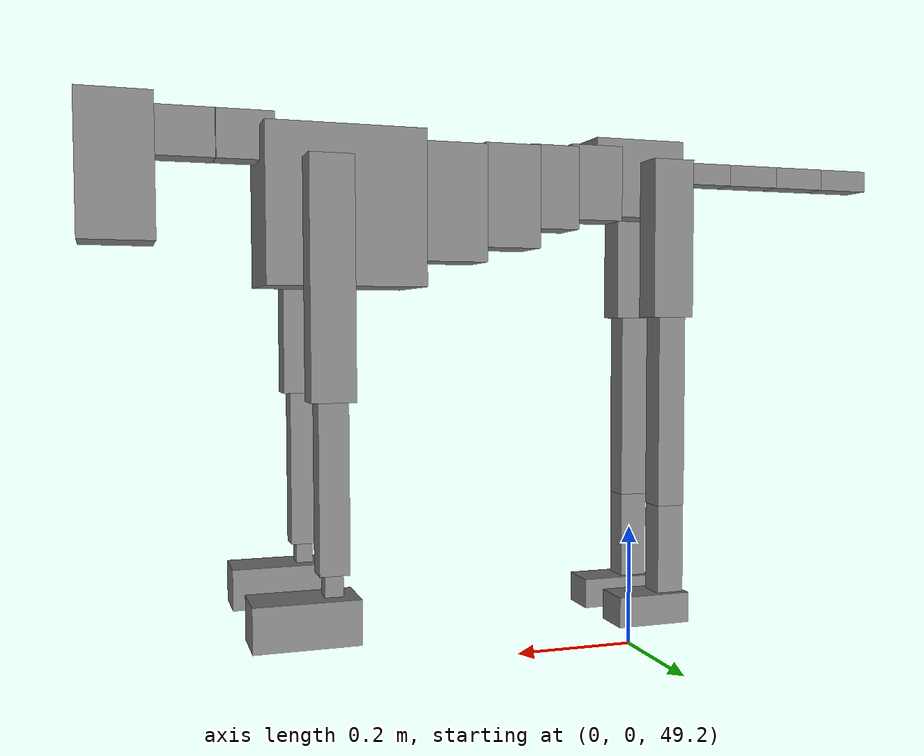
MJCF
<mujoco model="dog">

    <default>
        <joint armature="0.02" stiffness="1" damping="0.2" limited="true"/>
        <geom condim="3" friction="1 0.05 0.05" margin="0.01"/>
        <motor ctrllimited="true" ctrlrange="-1.0 1.0" forcelimited="true" gear="50"/>
    </default>

    <compiler inertiafromgeom="true" angle="radian"/>

    <option timestep="0.016" iterations="50" tolerance="1e-10" solver="Newton" jacobian="dense" cone="pyramidal"/>

    <size nconmax="20000" njmax="60000" nstack="5000000"/>
    <visual>
        <map force="0.1" zfar="30"/>
        <rgba haze="0.15 0.25 0.35 1"/>
        <quality shadowsize="2048"/>
        <global offwidth="800" offheight="800"/>
    </visual>

    <asset>
        <texture type="skybox" builtin="gradient" rgb1="0.3 0.5 0.7" rgb2="0 0 0" width="512" height="512"/>
        <texture name="texplane" type="2d" builtin="checker" rgb1=".2 .3 .4" rgb2=".1 0.15 0.2" width="512" height="512"
                 mark="cross" markrgb=".8 .8 .8"/>
        <texture name="texgeom" type="cube" builtin="flat" mark="cross" width="127" height="1278" rgb1="0.8 0.6 0.4"
                 rgb2="0.8 0.6 0.4" markrgb="1 1 1" random="0.01"/>

        <material name="matplane" reflectance="0.3" texture="texplane" texrepeat="1 1" texuniform="true"/>
        <material name="matgeom" texture="texgeom" texuniform="true" rgba="0.8 0.6 .4 1"/>
    </asset>

    <worldbody>
        <geom name="floor" pos="0 0 0" size="0 0 .25" type="plane" material="matplane" condim="3"/>

        <light directional="false" diffuse=".2 .2 .2" specular="0 0 0" pos="0 0 5" dir="0 0 -1" castshadow="false"/>
        <light mode="targetbodycom" target="torso" directional="false" diffuse=".8 .8 .8" specular="0.3 0.3 0.3"
               pos="0 0 4.0" dir="0 0 -1"/>

        <body name="root" pos="0 0 50">
            <freejoint name="root_1"/>
            <geom type="box" pos="0 0 -0.02" size="0.0774  0.0358  0.063" density="2030"/>

            <body name="spine1" pos="0.054 0 0">
                <joint name="spine1_y" axis="0 1 0" range="0 0.7" limited="true"/>
                <geom type="box" pos="0.02375 0 -0.03" size="0.04375  0.0375  0.05985" density="2030"/>

                <body name="spine2" pos="0.0612 0 0">
                    <joint name="spine2_y" axis="0 1 0" range="-0.15 0.15" limited="true"/>
                    <geom type="box" pos="0.03555  0  -0.04" size="0.04055  0.039  0.06615" density="2030"/>

                    <body name="spine3" pos="0.0730 0 0">
                        <joint name="spine3_y" axis="0 1 0" range="-0.15 0.15" limited="true"/>
                        <geom type="box" pos="0.03555  0  -0.057" size="0.04555  0.0445  0.081" density="2030"/>

                        <body name="spine4" pos="0.0780 0 0">
                            <joint name="spine4_y" axis="0 1 0" range="-0.15 0.15" limited="true"/>
                            <geom type="box" pos="0.05265  0  -0.07" size="0.05265  0.045  0.09135" density="2030"/>

                            <body name="torso" pos="0.1082 0 0">
                                <joint name="torso_y" axis="0 1 0" range="-0.15 0.15" limited="true"/>
                                <geom type="box" pos="0.11925  0  -0.085" size="0.11925  0.085  0.11745"
                                      density="2030"/>

                                <body name="neck1" pos="0.2160  0   0.0180">
                                    <joint name="neck1_y" axis="0 1 0" range="-1.2  -1" limited="true"/>
                                    <geom type="box" pos="0.0423  0  0" size="0.0423  0.03  0.036" density="2325"/>

                                    <body name="neck2" pos="0.0853  0  0">
                                        <joint name="neck2_y" axis="0 1 0" range="0.1  0" limited="true"/>
                                        <geom type="box" pos="0.0423  0  0" size="0.0423  0.03  0.036" density="2325"/>

                                        <body name="head" pos="0.0853  0  0">
                                            <joint name="head_y" axis="0 1 0" range="-0.3  -0.2" limited="true"/>
                                            <geom type="box" pos="0.0531  0  -0.055" size="0.0531  0.06  0.1044"
                                                  density="4030"/>

                                        </body>
                                    </body>
                                </body>

                                <body name="front_shoulder" pos="0.156  0   -0.0480">
                                    <joint name="front_shoulder_y" axis="0 1 0" range="-1 1.5" limited="true"/>
                                    <geom type="box" pos="0 0.13 -0.1472" size="0.0322  0.0275  0.1738" density="1158"/>
                                    <geom type="box" pos="0 -0.13 -0.1472" size="0.0322  0.0275  0.1738"
                                          density="1158"/>

                                    <body name="front_elbow" pos="0  0  -0.2944">
                                        <joint name="front_elbow_y" axis="0 1 0" range="-2 0" limited="true"/>
                                        <geom type="box" pos="0 0.13 -0.1365" size="0.0218  0.0223  0.1365"
                                              density="1081"/>
                                        <geom type="box" pos="0 -0.13 -0.1365" size="0.0218  0.0223  0.1365"
                                              density="1081"/>

                                        <body name="front_wrist" pos="0  0  -0.2730">
                                            <joint name="front_wrist_y" axis="0 1 0" range="-0.2 0" limited="true"/>
                                            <geom type="box" pos="0 0.13 -0.0233" size="0.0133  0.0148  0.0364"
                                                  density="1664"/>
                                            <geom type="box" pos="0 -0.13 -0.0233" size="0.0133  0.0148  0.0364"
                                                  density="1664"/>

                                            <body name="front_finger_end" pos="0  0  -0.0466">
                                                <joint name="front_finger_y" axis="0 1 0" range="-0.4 1"
                                                       limited="true"/>
                                                <geom type="box" pos="0.0418  0.13  -0.0178"
                                                      size="0.0766  0.0418  0.0328" density="1515"/>
                                                <geom type="box" pos="0.0418  -0.13  -0.0178"
                                                      size="0.0766  0.0418  0.0328" density="1515"/>

                                            </body>

                                        </body>
                                    </body>
                                </body>

                            </body>
                        </body>
                    </body>
                </body>
            </body>

            <body name="back_hip" pos="-0.03 0 -0.018">
                <joint name="back_hip_y" axis="0 1 0" range="-1.5 0.3" limited="true"/>
                <geom type="box" pos="0 0.07 -0.1030" size="0.0342  0.0269  0.1258" density="1154"/>
                <geom type="box" pos="0 -0.07 -0.1030" size="0.0342  0.0269  0.1258" density="1154"/>

                <body name="back_knee" pos="0  0  -0.2061">
                    <joint name="back_knee_y" axis="0 1 0" range="0 2.8" limited="true"/>
                    <geom type="box" pos="0 0.07 -0.1562" size="0.0229  0.0226  0.1717" density="1227"/>
                    <geom type="box" pos="0 -0.07 -0.1562" size="0.0229  0.0226  0.1717" density="1227"/>

                    <body name="back_ankle" pos="0  0  -0.3124">
                        <joint name="back_ankle_y" axis="0 1 0" range="-2.2 0" limited="true"/>
                        <geom type="box" pos="0 0.07 -0.0863" size="0.0223  0.0223  0.0975" density="1284"/>
                        <geom type="box" pos="0 -0.07 -0.0863" size="0.0223  0.0223  0.0975" density="1284"/>

                        <body name="back_toe_end" pos="0  0  -0.1726">
                            <joint name="back_toe_y" axis="0 1 0" range="-0.4 1" limited="true"/>
                            <geom type="box" pos="0.0331  0.07  -0.0094" size="0.0608  0.0331  0.0244" density="1515"/>
                            <geom type="box" pos="0.0331  -0.07  -0.0094" size="0.0608  0.0331  0.0244" density="1515"/>

                        </body>
                    </body>
                </body>
            </body>

            <body name="tail1" pos="-0.074 0 -0.006">
                <joint name="tail1_y" axis="0 1 0" range="-0.2 0.2" limited="true"/>
                <geom type="box" pos="-0.0536  0  0" size="0.045  0.025  0.0175" density="1587"/>

                <body name="tail2" pos="-0.09 0 0">
                    <joint name="tail2_y" axis="0 1 0" range="-0.2 0.2" limited="true"/>
                    <geom type="box" pos="-0.0536  0  0" size="0.045  0.025  0.0175" density="1587"/>

                    <body name="tail3" pos="-0.09 0 0">
                        <joint name="tail3_y" axis="0 1 0" range="-0.2 0.2" limited="true"/>
                        <geom type="box" pos="-0.0536  0  0" size="0.045  0.025  0.0175" density="1587"/>

                        <body name="tail4" pos="-0.09 0 0">
                            <joint name="tail4_y" axis="0 1 0" range="-0.2 0.2" limited="true"/>
                            <geom type="box" pos="-0.0536  0  0" size="0.045  0.025  0.0175" density="1587"/>

                        </body>
                    </body>
                </body>
            </body>
        </body>
    </worldbody>

    <actuator>
        <motor joint="spine1_y" forcerange="-150 150     "/>
        <motor joint="spine2_y" forcerange="-150 150     "/>
        <motor joint="spine3_y" forcerange="-150 150     "/>
        <motor joint="spine4_y" forcerange="-150 150     "/>
        <motor joint="torso_y" forcerange="-150 150     "/>
        <motor joint="neck1_y" forcerange="-100 100       "/>
        <motor joint="neck2_y" forcerange="-100 100       "/>
        <motor joint="head_y" forcerange="-150 150       "/>
        <motor joint="front_shoulder_y" forcerange="-112.56 171.07"/>
        <motor joint="front_elbow_y" forcerange="-155.30 106.94"/>
        <motor joint="front_wrist_y" forcerange="-59.00 59.02"/>
        <motor joint="front_finger_y" forcerange="-91.03 91.70"/>
        <motor joint="back_hip_y" forcerange="-271.60 286.44"/>
        <motor joint="back_knee_y" forcerange="-211.37 317.33"/>
        <motor joint="back_angle_y" forcerange="-174.32 83.14"/>
        <motor joint="back_toe_y" forcerange="-118.41 66.78"/>
        <motor joint="tail1_y" forcerange="-50 50     "/>
        <motor joint="tail2_y" forcerange="-50 50     "/>
        <motor joint="tail3_y" forcerange="-50 50     "/>
        <motor joint="tail4_y" forcerange="-50 50     "/>
    </actuator>
</mujoco>
